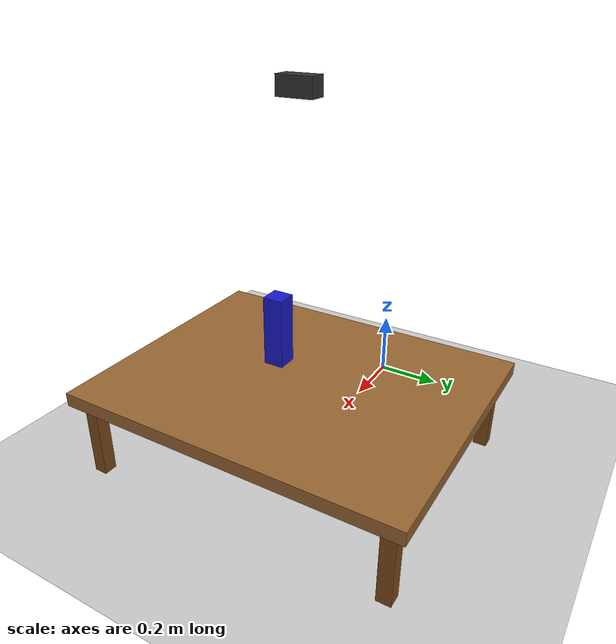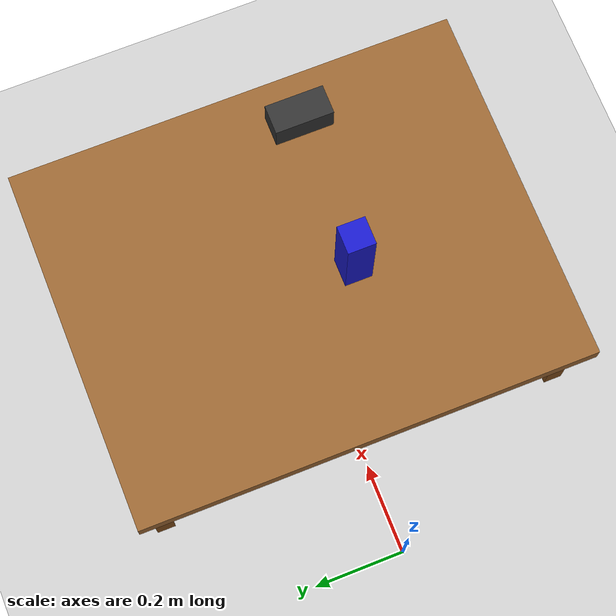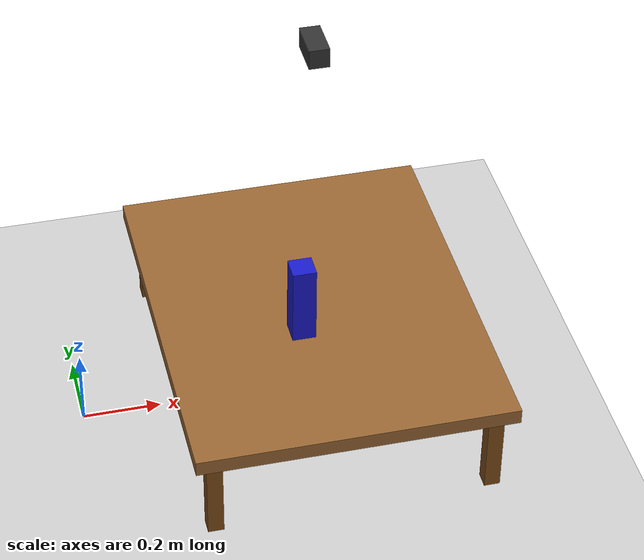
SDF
<?xml version="1.0" ?>
<sdf version="1.9">
  <world name="tabletop_world">
    <!-- GUI (default layout with custom camera pose) -->
    <gui fullscreen='0'>
      <plugin filename="MinimalScene" name="3D View">
        <gz-gui>
          <title>3D View</title>
          <property type="bool" key="showTitleBar">false</property>
          <property type="string" key="state">docked</property>
        </gz-gui>
        <engine>ogre2</engine>
        <scene>scene</scene>
        <ambient_light>0.4 0.4 0.4</ambient_light>
        <background_color>0.8 0.8 0.8</background_color>
        <camera_pose>1.31 0.98 1.07 0 0.39 -2.36</camera_pose>
      </plugin>
      <plugin filename="EntityContextMenuPlugin" name="Entity context menu">
        <gz-gui>
          <property key="state" type="string">floating</property>
          <property key="width" type="double">5</property>
          <property key="height" type="double">5</property>
          <property key="showTitleBar" type="bool">false</property>
        </gz-gui>
      </plugin>
      <plugin filename="GzSceneManager" name="Scene Manager">
        <gz-gui>
          <property key="resizable" type="bool">false</property>
          <property key="width" type="double">5</property>
          <property key="height" type="double">5</property>
          <property key="state" type="string">floating</property>
          <property key="showTitleBar" type="bool">false</property>
        </gz-gui>
      </plugin>
      <plugin filename="InteractiveViewControl" name="Interactive view control">
        <gz-gui>
          <property key="resizable" type="bool">false</property>
          <property key="width" type="double">5</property>
          <property key="height" type="double">5</property>
          <property key="state" type="string">floating</property>
          <property key="showTitleBar" type="bool">false</property>
        </gz-gui>
      </plugin>
      <plugin filename="CameraTracking" name="Camera Tracking">
        <gz-gui>
          <property key="resizable" type="bool">false</property>
          <property key="width" type="double">5</property>
          <property key="height" type="double">5</property>
          <property key="state" type="string">floating</property>
          <property key="showTitleBar" type="bool">false</property>
        </gz-gui>
      </plugin>
      <plugin filename="MarkerManager" name="Marker manager">
        <gz-gui>
          <property key="resizable" type="bool">false</property>
          <property key="width" type="double">5</property>
          <property key="height" type="double">5</property>
          <property key="state" type="string">floating</property>
          <property key="showTitleBar" type="bool">false</property>
        </gz-gui>
      </plugin>
      <plugin filename="SelectEntities" name="Select Entities">
        <gz-gui>
          <property key="resizable" type="bool">false</property>
          <property key="width" type="double">5</property>
          <property key="height" type="double">5</property>
          <property key="state" type="string">floating</property>
          <property key="showTitleBar" type="bool">false</property>
        </gz-gui>
      </plugin>
      <plugin filename="Spawn" name="Spawn Entities">
        <gz-gui>
          <property key="resizable" type="bool">false</property>
          <property key="width" type="double">5</property>
          <property key="height" type="double">5</property>
          <property key="state" type="string">floating</property>
          <property key="showTitleBar" type="bool">false</property>
        </gz-gui>
      </plugin>
      <plugin filename="VisualizationCapabilities" name="Visualization Capabilities">
        <gz-gui>
          <property key="resizable" type="bool">false</property>
          <property key="width" type="double">5</property>
          <property key="height" type="double">5</property>
          <property key="state" type="string">floating</property>
          <property key="showTitleBar" type="bool">false</property>
        </gz-gui>
      </plugin>
      <plugin filename="WorldControl" name="World control">
        <gz-gui>
          <title>World control</title>
          <property type="bool" key="showTitleBar">false</property>
          <property type="bool" key="resizable">false</property>
          <property type="double" key="height">72</property>
          <property type="double" key="z">1</property>
          <property type="string" key="state">floating</property>
          <anchors target="3D View">
            <line own="left" target="left"/>
            <line own="bottom" target="bottom"/>
          </anchors>
        </gz-gui>
        <play_pause>true</play_pause>
        <step>true</step>
        <start_paused>true</start_paused>
        <use_event>true</use_event>
      </plugin>
      <plugin filename="WorldStats" name="World stats">
        <gz-gui>
          <title>World stats</title>
          <property type="bool" key="showTitleBar">false</property>
          <property type="bool" key="resizable">false</property>
          <property type="double" key="height">110</property>
          <property type="double" key="width">290</property>
          <property type="double" key="z">1</property>
          <property type="string" key="state">floating</property>
          <anchors target="3D View">
            <line own="right" target="right"/>
            <line own="bottom" target="bottom"/>
          </anchors>
        </gz-gui>
        <sim_time>true</sim_time>
        <real_time>true</real_time>
        <real_time_factor>true</real_time_factor>
        <iterations>true</iterations>
      </plugin>
      <plugin filename="TransformControl" name="Transform control">
        <gz-gui>
          <property key="resizable" type="bool">false</property>
          <property key="x" type="double">0</property>
          <property key="y" type="double">50</property>
          <property key="width" type="double">250</property>
          <property key="height" type="double">50</property>
          <property key="state" type="string">floating</property>
          <property key="showTitleBar" type="bool">false</property>
          <property key="cardBackground" type="string">#777777</property>
        </gz-gui>
      </plugin>
      <plugin filename="ComponentInspector" name="Component inspector">
        <gz-gui>
          <property type="bool" key="showTitleBar">false</property>
          <property type="string" key="state">docked</property>
        </gz-gui>
      </plugin>
      <plugin filename="EntityTree" name="Entity tree">
        <gz-gui>
          <property type="bool" key="showTitleBar">false</property>
          <property type="string" key="state">docked</property>
        </gz-gui>
      </plugin>
    </gui>

    <!-- Physics -->
    <physics name="1ms" type="ignored">
      <max_step_size>0.001</max_step_size>
      <real_time_factor>1.0</real_time_factor>
    </physics>

    <!-- Plugins -->
    <plugin filename="gz-sim-physics-system" name="gz::sim::systems::Physics"/>
    <plugin filename="gz-sim-user-commands-system" name="gz::sim::systems::UserCommands"/>
    <plugin filename="gz-sim-scene-broadcaster-system" name="gz::sim::systems::SceneBroadcaster"/>
    <plugin filename="gz-sim-contact-system" name="gz::sim::systems::Contact"/>
    <plugin filename="gz_ros2_tf2_system" name="gz::sim::systems::TF2"/>

    <!-- Pose publisher for dynamic objects (bridges to ROS 2 via ros_gz_bridge) -->
    <plugin filename="gz-sim-pose-publisher-system" name="gz::sim::systems::PosePublisher">
      <publish_nested_model_pose>true</publish_nested_model_pose>
      <publish_model_pose>true</publish_model_pose>
      <publish_link_pose>false</publish_link_pose>
      <publish_collision_pose>false</publish_collision_pose>
      <publish_visual_pose>false</publish_visual_pose>
      <update_frequency>30</update_frequency>
      <!-- Also publish when poses change (not just during physics) -->
      <static_publisher>true</static_publisher>
      <static_update_frequency>30</static_update_frequency>
      <use_pose_vector_msg>true</use_pose_vector_msg>
    </plugin>

    <!-- Lighting -->
    <light type="directional" name="sun">
      <cast_shadows>true</cast_shadows>
      <pose>0 0 10 0 0 0</pose>
      <diffuse>0.8 0.8 0.8 1</diffuse>
      <specular>0.2 0.2 0.2 1</specular>
      <attenuation>
        <range>1000</range>
        <constant>0.9</constant>
        <linear>0.01</linear>
        <quadratic>0.001</quadratic>
      </attenuation>
      <direction>-0.5 0.1 -0.9</direction>
    </light>

    <!-- Ground Plane -->
    <model name="ground_plane">
      <static>true</static>
      <link name="link">
        <collision name="collision">
          <geometry>
            <plane>
              <normal>0 0 1</normal>
              <size>100 100</size>
            </plane>
          </geometry>
        </collision>
        <visual name="visual">
          <geometry>
            <plane>
              <normal>0 0 1</normal>
              <size>100 100</size>
            </plane>
          </geometry>
          <material>
            <ambient>0.8 0.8 0.8 1</ambient>
            <diffuse>0.8 0.8 0.8 1</diffuse>
            <specular>0.8 0.8 0.8 1</specular>
          </material>
        </visual>
      </link>
    </model>

    <!-- Table -->
    <model name="table">
      <static>true</static>
      <pose>0.6 0 0 0 0 0</pose>
      <!-- Table top -->
      <link name="table_top">
        <pose>0 0 0.25 0 0 0</pose>
        <collision name="collision">
          <geometry>
            <box>
              <size>0.8 1.0 0.04</size>
            </box>
          </geometry>
        </collision>
        <visual name="visual">
          <geometry>
            <box>
              <size>0.8 1.0 0.04</size>
            </box>
          </geometry>
          <material>
            <ambient>0.6 0.4 0.2 1</ambient>
            <diffuse>0.6 0.4 0.2 1</diffuse>
            <specular>0.1 0.1 0.1 1</specular>
          </material>
        </visual>
      </link>
      <!-- Table legs -->
      <link name="leg1">
        <pose>0.35 0.45 0.115 0 0 0</pose>
        <collision name="collision">
          <geometry>
            <box>
              <size>0.04 0.04 0.23</size>
            </box>
          </geometry>
        </collision>
        <visual name="visual">
          <geometry>
            <box>
              <size>0.04 0.04 0.23</size>
            </box>
          </geometry>
          <material>
            <ambient>0.5 0.3 0.1 1</ambient>
            <diffuse>0.5 0.3 0.1 1</diffuse>
          </material>
        </visual>
      </link>
      <link name="leg2">
        <pose>0.35 -0.45 0.115 0 0 0</pose>
        <collision name="collision">
          <geometry>
            <box>
              <size>0.04 0.04 0.23</size>
            </box>
          </geometry>
        </collision>
        <visual name="visual">
          <geometry>
            <box>
              <size>0.04 0.04 0.23</size>
            </box>
          </geometry>
          <material>
            <ambient>0.5 0.3 0.1 1</ambient>
            <diffuse>0.5 0.3 0.1 1</diffuse>
          </material>
        </visual>
      </link>
      <link name="leg3">
        <pose>-0.35 0.45 0.115 0 0 0</pose>
        <collision name="collision">
          <geometry>
            <box>
              <size>0.04 0.04 0.23</size>
            </box>
          </geometry>
        </collision>
        <visual name="visual">
          <geometry>
            <box>
              <size>0.04 0.04 0.23</size>
            </box>
          </geometry>
          <material>
            <ambient>0.5 0.3 0.1 1</ambient>
            <diffuse>0.5 0.3 0.1 1</diffuse>
          </material>
        </visual>
      </link>
      <link name="leg4">
        <pose>-0.35 -0.45 0.115 0 0 0</pose>
        <collision name="collision">
          <geometry>
            <box>
              <size>0.04 0.04 0.23</size>
            </box>
          </geometry>
        </collision>
        <visual name="visual">
          <geometry>
            <box>
              <size>0.04 0.04 0.23</size>
            </box>
          </geometry>
          <material>
            <ambient>0.5 0.3 0.1 1</ambient>
            <diffuse>0.5 0.3 0.1 1</diffuse>
          </material>
        </visual>
      </link>
      <joint name="leg1_joint" type="fixed">
        <parent>table_top</parent>
        <child>leg1</child>
      </joint>
      <joint name="leg2_joint" type="fixed">
        <parent>table_top</parent>
        <child>leg2</child>
      </joint>
      <joint name="leg3_joint" type="fixed">
        <parent>table_top</parent>
        <child>leg3</child>
      </joint>
      <joint name="leg4_joint" type="fixed">
        <parent>table_top</parent>
        <child>leg4</child>
      </joint>
    </model>

    <!-- Blue Box (graspable object) -->
    <model name="blue_box">
      <pose>0.55 -0.1 0.375 0 0 0</pose>
      <link name="link">
        <inertial>
          <mass>0.1</mass>
          <inertia>
            <ixx>0.00038</ixx>
            <ixy>0</ixy>
            <ixz>0</ixz>
            <iyy>0.00038</iyy>
            <iyz>0</iyz>
            <izz>0.000032</izz>
          </inertia>
        </inertial>
        <collision name="collision">
          <geometry>
            <box>
              <size>0.06 0.06 0.21</size>
            </box>
          </geometry>
          <surface>
            <friction>
              <ode>
                <mu>50.0</mu>
                <mu2>50.0</mu2>
              </ode>
            </friction>
          </surface>
        </collision>
        <visual name="visual">
          <geometry>
            <box>
              <size>0.06 0.06 0.21</size>
            </box>
          </geometry>
          <material>
            <ambient>0.1 0.1 0.8 1</ambient>
            <diffuse>0.1 0.1 0.8 1</diffuse>
            <specular>0.1 0.1 0.8 1</specular>
          </material>
        </visual>
      </link>
    </model>

    <!-- RGBD Camera -->
    <model name="overhead_camera">
      <plugin
        filename="gz-sim-sensors-system"
        name="gz::sim::systems::Sensors">
        <render_engine>ogre2</render_engine>
      </plugin>
      <static>true</static>
      <pose>0.6 0 1.05 0 1.5708 0</pose>
      <link name="camera_link">
        <visual name="visual">
          <geometry>
            <box>
              <size>0.05 0.1 0.05</size>
            </box>
          </geometry>
          <material>
            <ambient>0.2 0.2 0.2 1</ambient>
            <diffuse>0.2 0.2 0.2 1</diffuse>
          </material>
        </visual>
        <sensor name="rgbd_camera" type="rgbd_camera">
          <update_rate>10</update_rate>
          <camera>
            <horizontal_fov>1.047</horizontal_fov>
            <image>
              <width>640</width>
              <height>480</height>
              <format>R8G8B8</format>
            </image>
            <clip>
              <near>0.1</near>
              <far>10.0</far>
            </clip>
            <depth_camera>
              <clip>
                <near>0.1</near>
                <far>10.0</far>
              </clip>
            </depth_camera>
          </camera>
          <always_on>true</always_on>
          <visualize>true</visualize>
          <topic>overhead_camera</topic>
          <gz_frame_id>overhead_camera_link</gz_frame_id>
        </sensor>
      </link>
    </model>
  </world>
</sdf>
